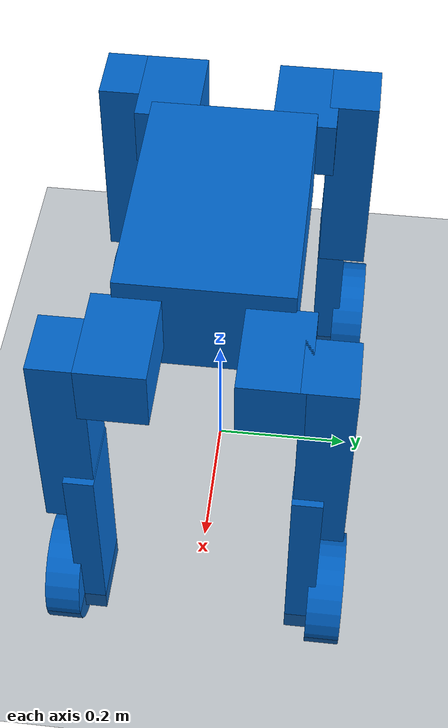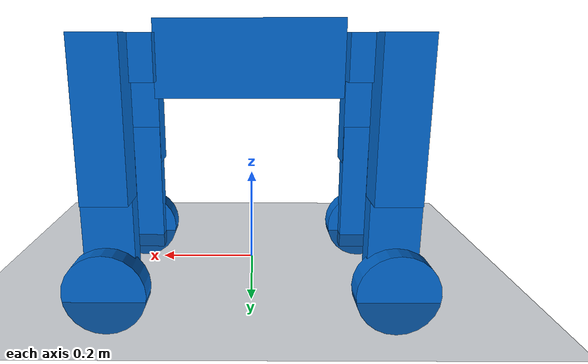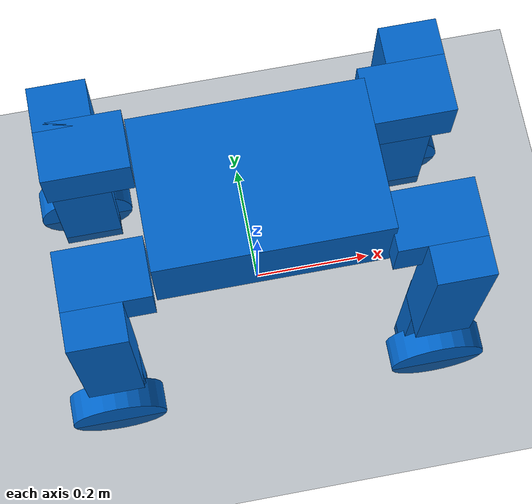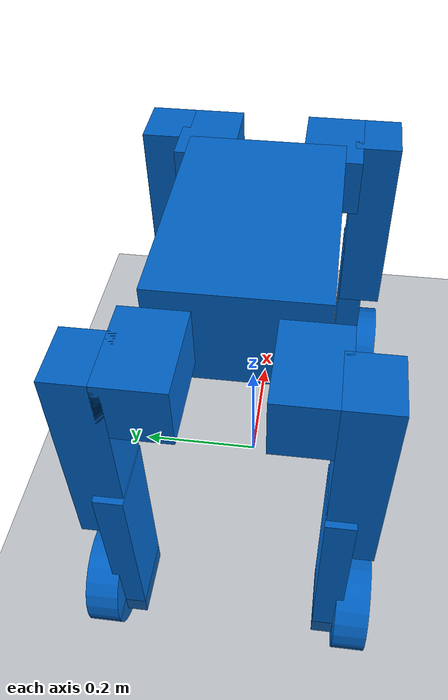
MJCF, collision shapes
<?xml version="1.0" ?>
<mujoco model="wheel_legged_dog">
  <compiler angle="radian" autolimits="true" meshdir="../wheeldog_description/mywheeldog/meshes/"/>
  <option timestep="0.005"/>
  <default>
    <default class="robot">
      <default class="motor">
        <joint/>
        <motor/>
      </default>
      <default class="visual">
        <geom material="default_material" contype="0" conaffinity="0" group="2"/>
      </default>
      <default class="collision">
        <geom material="collision_material" condim="3" contype="1" conaffinity="1" solref="0.005 1" friction="1 0.01 0.001" density="0" group="1"/>
      </default>
    </default>
  </default>
  <asset>
    <material name="default_material" rgba="0.7 0.7 0.7 1"/>
    <material name="collision_material" rgba="0.0 0.4 0.8 0.2"/>
    <mesh name="TORSO" file="TORSO.STL"/>
    <mesh name="FL_HIP" file="FL_HIP.STL"/>
    <mesh name="FL_THIGH" file="FL_THIGH.STL"/>
    <mesh name="FL_SHANK" file="FL_SHANK.STL"/>
    <mesh name="FL_FOOT" file="FL_FOOT.STL"/>
    <mesh name="FR_HIP" file="FR_HIP.STL"/>
    <mesh name="FR_THIGH" file="FR_THIGH.STL"/>
    <mesh name="FR_SHANK" file="FR_SHANK.STL"/>
    <mesh name="FR_FOOT" file="FR_FOOT.STL"/>
    <mesh name="HL_Hip" file="HL_Hip.STL"/>
    <mesh name="HL_THIGH" file="HL_THIGH.STL"/>
    <mesh name="HL_SHANK" file="HL_SHANK.STL"/>
    <mesh name="HL_FOOT" file="HL_FOOT.STL"/>
    <mesh name="HR_Hip" file="HR_Hip.STL"/>
    <mesh name="HR_THIGH" file="HR_THIGH.STL"/>
    <mesh name="HR_SHANK" file="HR_SHANK.STL"/>
    <mesh name="HR_FOOT" file="HR_FOOT.STL"/>
    <texture name="texplane" type="2d" builtin="checker" rgb1=".2 .3 .4" rgb2=".1 0.15 0.2" width="512" height="512"/>
    <material name="MatPlane" reflectance="0.3" texture="texplane" texrepeat="1 1" texuniform="true"/>
  </asset>
  <worldbody>
    <light directional="true" pos="-0.5 0.5 3" dir="0 0 -1"/>
    <geom name="floor" pos="0 0 0" size="100 100 0.125" type="plane" material="MatPlane" condim="3" friction="1 0.01 0.01" group="0"/>
    <body name="TORSO" pos="0 0 0.45" quat="1 0 0 0" childclass="robot">
      <freejoint name="floating_base"/>
      <inertial pos="0 0 0" mass="10.5939" fullinertia="2.244989E-02 3.593972E-02 4.818445E-02 4.513171E-07 3.977473E-07 8.931130E-08"/>
      <site name="imu_site" pos="0 0 0" size="0.005" rgba="1 0 0 1"/>
      <site name="base_site" pos="0 0 0" quat="1 0 0 0"/>
      <geom type="mesh" mesh="TORSO" pos="-0.17132 -0.082853 -0.17763" euler="0 0 -1.57079632679" class="visual"/>
      <geom size="0.18 0.119 0.074" pos="0.00368 4.7e-05 -0.00063" type="box" class="collision"/>
      <body name="FL_HIP" pos="0.186223 0.0725678 0.00207736">
        <inertial pos="0.070477 0.040444 0.000175" mass="0.901000" fullinertia="6.779220E-04 1.368307E-03 1.331932E-03 9.538100E-05 2.057000E-06 1.348000E-06"/>
        <joint name="FL_HipX_joint" pos="0 0 0" axis="1 0 0" range="-0.7854 0.7854"/>
        <geom type="mesh" mesh="FL_HIP" class="visual"/>
        <geom size="0.0675 0.04625 0.045" pos="0.061 0.0278 0" type="box" class="collision"/>
        <body name="FL_THIGH" pos="0.0835 0.07 0" quat="1 0 0 -3.73265e-05">
          <inertial pos="0.000103 0.023360 -0.157618" mass="1.201000" fullinertia="9.982389E-03 1.013524E-02 9.005400E-04 9.890000E-07 -7.162000E-06 -1.161495E-03"/>
          <joint name="FL_HipY_joint" pos="0 0 0" axis="0 1 0" range="-2.618 2.618"/>
          <geom type="mesh" mesh="FL_THIGH" class="visual"/>
          <geom size="0.045 0.036 0.155" pos="0 0.0275 -0.11" type="box" class="collision"/>
          <body name="FL_SHANK" pos="0 0.0045 -0.22" quat="1 0 0 3.73267e-05">
            <inertial pos="0.0102344801412479 -0.00705081143452821 -0.0901428442063565" mass="0.875000" fullinertia="8.123158E-03 8.411166E-03 5.552230E-04 -4.345000E-06 -2.567050E-04 -4.497470E-04"/>
            <joint name="FL_Knee_joint" pos="0 0 0" axis="0 1 0" range="-2.65 2.65"/>
            <geom type="mesh" mesh="FL_SHANK" class="visual"/>
            <geom size="0.05 0.021 0.15485" pos="0.0051 0.0065 -0.1099" type="box" class="collision"/>
            <body name="FL_FOOT" pos="0.0104705 -0.0045 -0.219751">
              <inertial pos="-0.000001 0.046293 -0.000001" mass="0.514000" fullinertia="1.132843E-03 2.106672E-03 1.132837E-03 0.000000E+00 0.000000E+00 0.000000E+00"/>
              <joint name="FL_Ankle" pos="0 0 0" axis="0 1 0"/>
              <geom type="mesh" mesh="FL_FOOT" class="visual"/>
              <geom size="0.0814 0.02465" pos="0 0.046293 0" quat="0.707105 0.707108 0 0" type="cylinder" class="collision"/>
            </body>
          </body>
        </body>
      </body>
      <body name="FR_HIP" pos="0.18622 -0.072432 0.00208" quat="1 0 0 1.8366e-06">
        <inertial pos="0.070477 -0.040444 0.000175" mass="0.901000" fullinertia="6.779220E-04 1.368307E-03 1.331932E-03 -9.538100E-05 2.057000E-06 -1.348000E-06"/>
        <joint name="FR_HipX_joint" pos="0 0 0" axis="1 0 0" range="-0.7854 0.7854"/>
        <geom type="mesh" mesh="FR_HIP" class="visual"/>
        <geom size="0.0675 0.04625 0.045" pos="0.061 -0.0277 0" type="box" class="collision"/>
        <body name="FR_THIGH" pos="0.0835 -0.0699979 0">
          <inertial pos="0.000103 -0.023360 -0.157618" mass="1.201000" fullinertia="9.982389E-03 1.013524E-02 9.005400E-04 -9.890000E-07 -7.162000E-06 1.161495E-03"/>
          <joint name="FR_HipY_joint" pos="0 0 0" axis="0 1 0" range="-2.618 2.618"/>
          <geom type="mesh" mesh="FR_THIGH" class="visual"/>
          <geom size="0.045 0.036 0.155" pos="0 -0.0275 -0.11" type="box" class="collision"/>
          <body name="FR_SHANK" pos="0 -0.0045 -0.22">
            <inertial pos="0.0102335137649963 0.00705014206401373 -0.0901429071391265" mass="0.875000" fullinertia="8.123158E-03 8.411166E-03 5.552230E-04 4.345000E-06 -2.567050E-04 4.497470E-04"/>
            <joint name="FR_Knee_joint" pos="0 0 0" axis="0 1 0" range="-2.65 2.65"/>
            <geom type="mesh" mesh="FR_SHANK" class="visual"/>
            <geom size="0.05 0.021 0.15485" pos="0.0051 -0.0065 -0.1099" type="box" class="collision"/>
            <body name="FR_FOOT" pos="0.0104705 0.0045 -0.219751">
              <inertial pos="-0.000001 -0.046293 -0.000001" mass="0.514000" fullinertia="1.132843E-03 2.106672E-03 1.132837E-03 -0.000000E+00 0.000000E+00 -0.000000E+00"/>
              <joint name="FR_Ankle" pos="0 0 0" axis="0 1 0"/>
              <geom type="mesh" mesh="FR_FOOT" pos="0 -0.0462931261351 0" euler="1.57079632679 0 0" class="visual"/>
              <geom size="0.0814 0.02465" pos="0 -0.0462931 0" quat="0.707107 0.707107 0 0" type="cylinder" class="collision"/>
            </body>
          </body>
        </body>
      </body>
      <body name="HL_Hip" pos="-0.185777 0.072567 0.00208" quat="1 0 0 1.8366e-06">
        <inertial pos="-0.070477 0.040444 0.000175" mass="0.901000" fullinertia="6.779220E-04 1.368307E-03 1.331932E-03 -9.538100E-05 -2.057000E-06 1.348000E-06"/>
        <joint name="HL_HipX_joint" pos="0 0 0" axis="1 0 0" range="-0.7854 0.7854"/>
        <geom type="mesh" mesh="HL_Hip" class="visual"/>
        <geom size="0.0675 0.04625 0.045" pos="-0.061 0.0278 0" type="box" class="collision"/>
        <body name="HL_THIGH" pos="-0.0835 0.07 0">
          <inertial pos="-0.000103 0.023360 -0.157618" mass="1.201000" fullinertia="9.982389E-03 1.013524E-02 9.005400E-04 -9.890000E-07 7.162000E-06 -1.161495E-03"/>
          <joint name="HL_HipY_joint" pos="0 0 0" axis="0 1 0" range="-2.618 2.618"/>
          <geom type="mesh" mesh="HL_THIGH" class="visual"/>
          <geom size="0.045 0.036 0.155" pos="0 0.0275 -0.11" type="box" class="collision"/>
          <body name="HL_SHANK" pos="0 0.0045 -0.22">
            <inertial pos="-0.0102335138101311 -0.00705074667591804 -0.0901428598448259" mass="0.875000" fullinertia="8.123158E-03 8.411166E-03 5.552230E-04 4.345000E-06 2.567050E-04 -4.497470E-04"/>
            <joint name="HL_Knee_joint" pos="0 0 0" axis="0 1 0" range="-2.65 2.65"/>
            <geom type="mesh" mesh="HL_SHANK" class="visual"/>
            <geom size="0.05 0.021 0.15485" pos="-0.0051 0.0065 -0.1099" type="box" class="collision"/>
            <body name="HL_FOOT" pos="-0.0104705 -0.0045 -0.219751">
              <inertial pos="0.000001 0.046293 -0.000001" mass="0.514000" fullinertia="1.132843E-03 2.106672E-03 1.132837E-03 -0.000000E+00 -0.000000E+00 0.000000E+00"/>
              <joint name="HL_Ankle" pos="0 0 0" axis="0 1 0"/>
              <geom type="mesh" mesh="HL_FOOT" class="visual"/>
              <geom size="0.0814 0.02465" pos="0 0.046293 0" quat="0.707105 0.707108 0 0" type="cylinder" class="collision"/>
            </body>
          </body>
        </body>
      </body>
      <body name="HR_Hip" pos="-0.185777 -0.0724312 0.00207736">
        <inertial pos="-0.070477 -0.040444 0.000175" mass="0.901000" fullinertia="6.779220E-04 1.368307E-03 1.331932E-03 9.538100E-05 -2.057000E-06 -1.348000E-06"/>
        <joint name="HR_HipX_joint" pos="0 0 0" axis="1 0 0" range="-0.7854 0.7854"/>
        <geom type="mesh" mesh="HR_Hip" class="visual"/>
        <geom size="0.0675 0.04625 0.045" pos="-0.061 -0.0278 0" type="box" class="collision"/>
        <body name="HR_THIGH" pos="-0.0835 -0.07 0">
          <inertial pos="-0.000103 -0.023360 -0.157618" mass="1.201000" fullinertia="9.982389E-03 1.013524E-02 9.005400E-04 9.890000E-07 7.162000E-06 1.161495E-03"/>
          <joint name="HR_HipY_joint" pos="0 0 0" axis="0 1 0" range="-2.618 2.618"/>
          <geom type="mesh" mesh="HR_THIGH" class="visual"/>
          <geom size="0.0455 0.036 0.155" pos="0.0005 -0.0275 -0.11" type="box" class="collision"/>
          <body name="HR_SHANK" pos="0 -0.0045 -0.22">
            <inertial pos="-0.0102344957667752 0.00705081295562879 -0.090142859158988" mass="0.875000" fullinertia="8.123158E-03 8.411166E-03 5.552230E-04 -4.345000E-06 2.567050E-04 4.497470E-04"/>
            <joint name="HR_Knee_joint" pos="0 0 0" axis="0 1 0" range="-2.65 2.65"/>
            <geom type="mesh" mesh="HR_SHANK" class="visual"/>
            <geom size="0.05 0.021 0.15485" pos="-0.0051 -0.0065 -0.1099" type="box" class="collision"/>
            <body name="HR_FOOT" pos="-0.0104705 0.0045 -0.219751">
              <inertial pos="0.000001 -0.046293 -0.000001" mass="0.514000" fullinertia="1.132843E-03 2.106672E-03 1.132837E-03 0.000000E+00 -0.000000E+00 -0.000000E+00"/>
              <joint name="HR_Ankle" pos="0 0 0" axis="0 1 0"/>
              <geom type="mesh" mesh="HR_FOOT" class="visual"/>
              <geom size="0.0814 0.02465" pos="0 -0.0462931 0" quat="0.707105 0.707108 0 0" type="cylinder" class="collision"/>
            </body>
          </body>
        </body>
      </body>
    </body>
  </worldbody>
  <actuator>
    <motor name="FL_HipX_joint" joint="FL_HipX_joint" ctrllimited="true" ctrlrange="-36 36" gear="1"/>
    <motor name="FL_HipY_joint" joint="FL_HipY_joint" ctrllimited="true" ctrlrange="-36 36" gear="1"/>
    <motor name="FL_Knee_joint" joint="FL_Knee_joint" ctrllimited="true" ctrlrange="-36 36" gear="1"/>
    <velocity name="FL_Ankle" joint="FL_Ankle" ctrllimited="true" ctrlrange="-50 50" kv="0.4"/>
    <motor name="FR_HipX_joint" joint="FR_HipX_joint" ctrllimited="true" ctrlrange="-36 36" gear="1"/>
    <motor name="FR_HipY_joint" joint="FR_HipY_joint" ctrllimited="true" ctrlrange="-36 36" gear="1"/>
    <motor name="FR_Knee_joint" joint="FR_Knee_joint" ctrllimited="true" ctrlrange="-36 36" gear="1"/>
    <velocity name="FR_Ankle" joint="FR_Ankle" ctrllimited="true" ctrlrange="-50 50" kv="0.4"/>
    <motor name="HL_HipX_joint" joint="HL_HipX_joint" ctrllimited="true" ctrlrange="-36 36" gear="1"/>
    <motor name="HL_HipY_joint" joint="HL_HipY_joint" ctrllimited="true" ctrlrange="-36 36" gear="1"/>
    <motor name="HL_Knee_joint" joint="HL_Knee_joint" ctrllimited="true" ctrlrange="-36 36" gear="1"/>
    <velocity name="HL_Ankle" joint="HL_Ankle" ctrllimited="true" ctrlrange="-50 50" kv="0.4"/>
    <motor name="HR_HipX_joint" joint="HR_HipX_joint" ctrllimited="true" ctrlrange="-36 36" gear="1"/>
    <motor name="HR_HipY_joint" joint="HR_HipY_joint" ctrllimited="true" ctrlrange="-36 36" gear="1"/>
    <motor name="HR_Knee_joint" joint="HR_Knee_joint" ctrllimited="true" ctrlrange="-36 36" gear="1"/>
    <velocity name="HR_Ankle" joint="HR_Ankle" ctrllimited="true" ctrlrange="-50 50" kv="0.4"/>
  </actuator>
  <contact>
    <exclude body1="TORSO" body2="FL_HIP"/>
    <exclude body1="FL_HIP" body2="FL_THIGH"/>
    <exclude body1="FL_THIGH" body2="FL_SHANK"/>
    <exclude body1="FL_SHANK" body2="FL_FOOT"/>
    <exclude body1="TORSO" body2="FR_HIP"/>
    <exclude body1="FR_HIP" body2="FR_THIGH"/>
    <exclude body1="FR_THIGH" body2="FR_SHANK"/>
    <exclude body1="FR_SHANK" body2="FR_FOOT"/>
    <exclude body1="TORSO" body2="HL_Hip"/>
    <exclude body1="HL_Hip" body2="HL_THIGH"/>
    <exclude body1="HL_THIGH" body2="HL_SHANK"/>
    <exclude body1="HL_SHANK" body2="HL_FOOT"/>
    <exclude body1="TORSO" body2="HR_Hip"/>
    <exclude body1="HR_Hip" body2="HR_THIGH"/>
    <exclude body1="HR_THIGH" body2="HR_SHANK"/>
    <exclude body1="HR_SHANK" body2="HR_FOOT"/>
  </contact>
  <sensor>
    <framequat name="base_quat" objtype="site" objname="base_site"/>
    <accelerometer name="imu_acc" site="imu_site"/>
    <gyro name="imu_gyro" site="imu_site"/>
  </sensor>
</mujoco>
